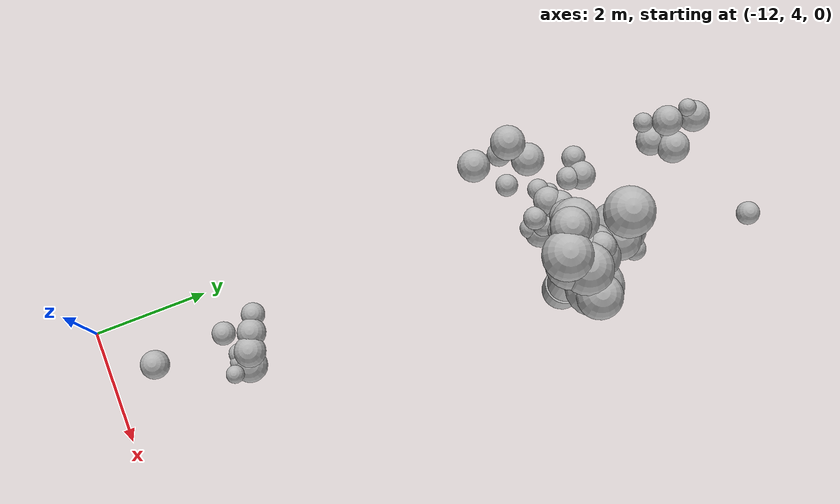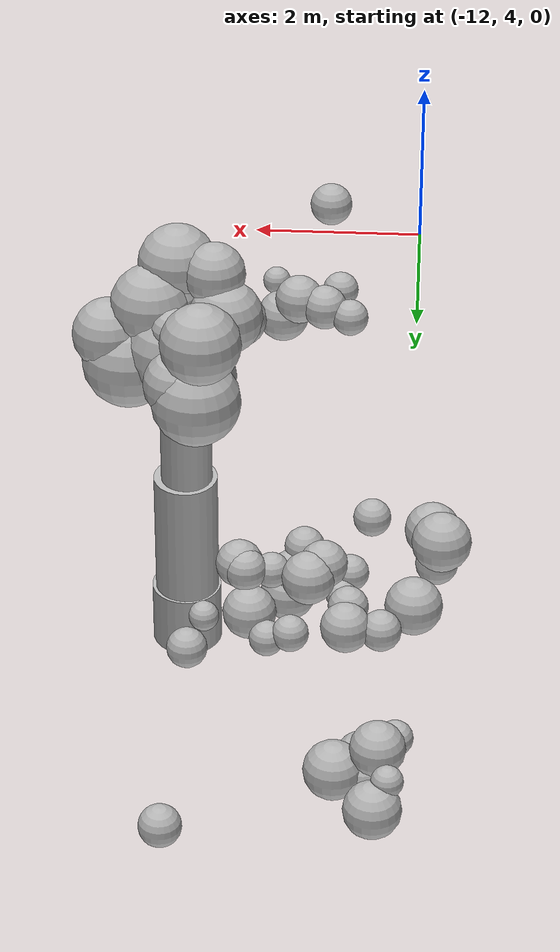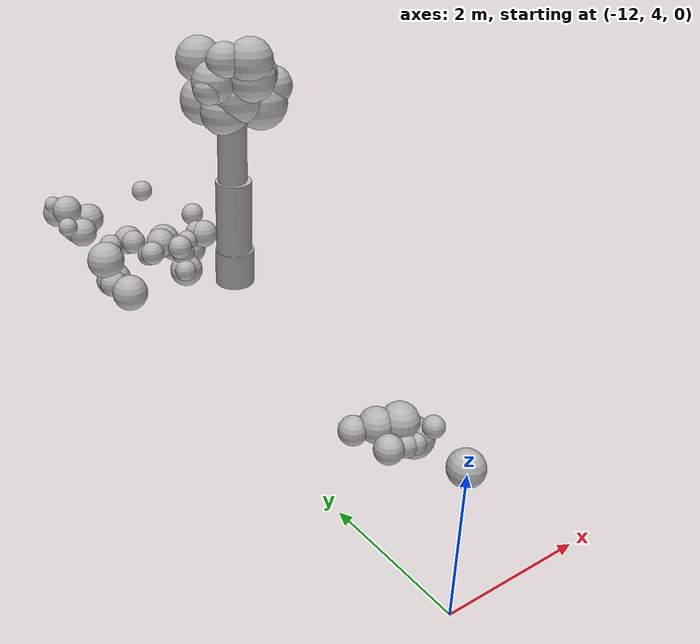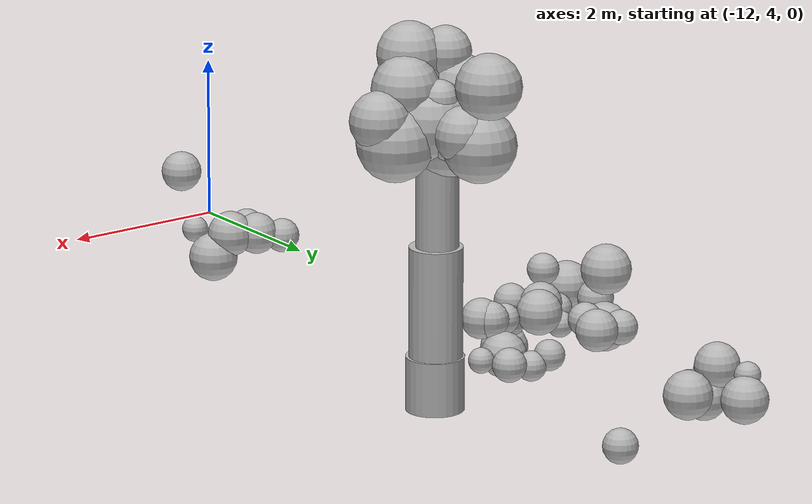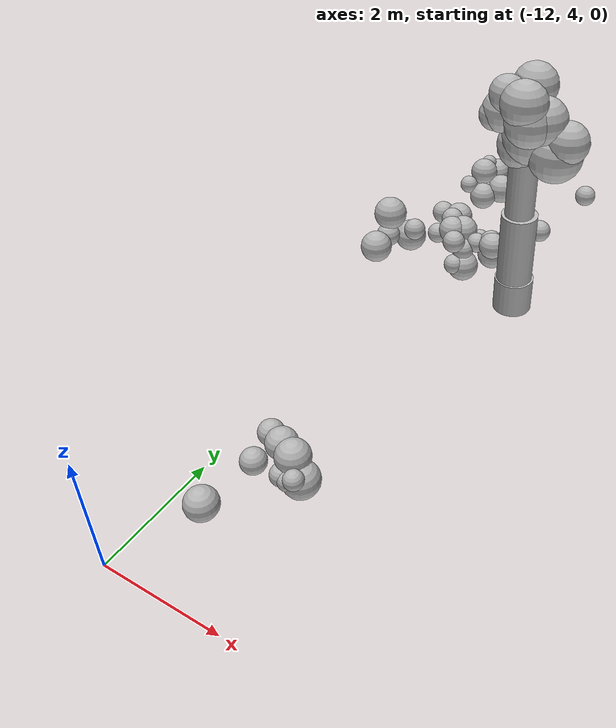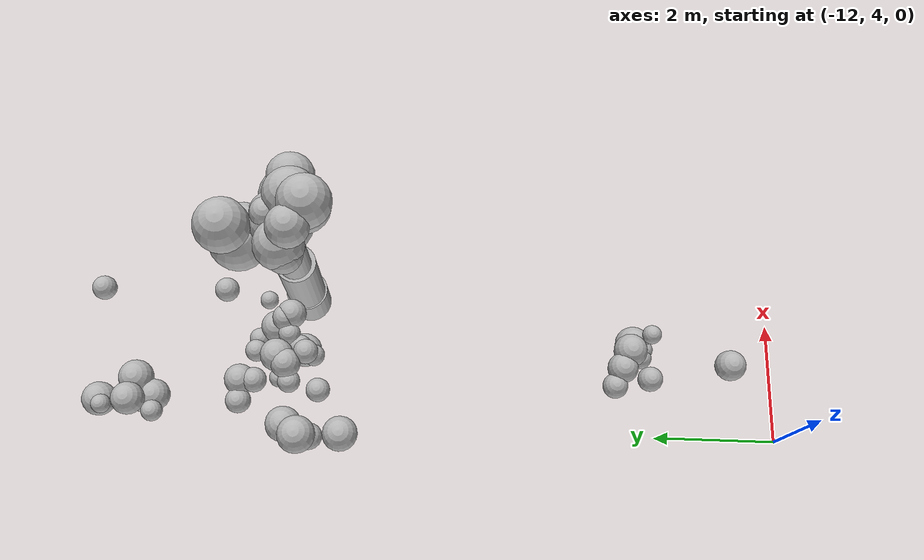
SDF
<sdf version="1.6">
 <world name="default">
  <model name="bush_31">
   <static>true</static>
   <pose>-9.7925 11.8912 0 0 0 0</pose>
   <link name="trunk">
    <pose>0 0 1.5000 0 0 0</pose>
    <collision name="trunk_c">
     <geometry><cylinder><radius>0.3500</radius><length>3.0000</length></cylinder></geometry>
    </collision>
   </link>
   <link name="trunk_v0">
    <pose>-0.0012 0.0007 0.3100 0 0 0</pose>
    <visual name="trunk_v0_v">
     <geometry><cylinder><radius>0.3448</radius><length>0.6448</length></cylinder></geometry>
     <material>
      <script>
       <uri>model://bushfire/materials/scripts</uri>
       <uri>model://bushfire/materials/textures</uri>
       <name>Bushfire/CharBark</name>
      </script>
     </material>
    </visual>
   </link>
   <link name="trunk_v1">
    <pose>-0.0087 0.0049 1.2700 0 0 0</pose>
    <visual name="trunk_v1_v">
     <geometry><cylinder><radius>0.3150</radius><length>1.3520</length></cylinder></geometry>
     <material>
      <script>
       <uri>model://bushfire/materials/scripts</uri>
       <uri>model://bushfire/materials/textures</uri>
       <name>Bushfire/BarkSmooth</name>
      </script>
     </material>
    </visual>
   </link>
   <link name="trunk_v2">
    <pose>-0.0219 0.0123 2.4600 0 0 0</pose>
    <visual name="trunk_v2_v">
     <geometry><cylinder><radius>0.2520</radius><length>1.1232</length></cylinder></geometry>
     <material>
      <script>
       <uri>model://bushfire/materials/scripts</uri>
       <uri>model://bushfire/materials/textures</uri>
       <name>Bushfire/BarkSmooth</name>
      </script>
     </material>
    </visual>
   </link>
   <link name="branch0">
    <pose>0.1908 -0.1245 3.0217 0 0.8707 5.7051</pose>
    <visual name="branch0_v">
     <geometry><cylinder><radius>0.0363</radius><length>0.5959</length></cylinder></geometry>
     <material>
      <script>
       <uri>model://bushfire/materials/scripts</uri>
       <uri>model://bushfire/materials/textures</uri>
       <name>Bushfire/BarkSmooth</name>
      </script>
     </material>
    </visual>
   </link>
   <link name="branch1">
    <pose>-0.0284 0.3811 3.0236 0 1.0137 7.9284</pose>
    <visual name="branch1_v">
     <geometry><cylinder><radius>0.0400</radius><length>0.9004</length></cylinder></geometry>
     <material>
      <script>
       <uri>model://bushfire/materials/scripts</uri>
       <uri>model://bushfire/materials/textures</uri>
       <name>Bushfire/BarkSmooth</name>
      </script>
     </material>
    </visual>
   </link>
   <link name="branch2">
    <pose>-0.1347 -0.0751 2.9916 0 0.5234 9.9337</pose>
    <visual name="branch2_v">
     <geometry><cylinder><radius>0.0324</radius><length>0.6170</length></cylinder></geometry>
     <material>
      <script>
       <uri>model://bushfire/materials/scripts</uri>
       <uri>model://bushfire/materials/textures</uri>
       <name>Bushfire/BarkSmooth</name>
      </script>
     </material>
    </visual>
   </link>
   <link name="foliage0">
    <pose>0.0651 0.0145 3.4418 0 0 0</pose>
    <visual name="foliage0_v">
     <geometry><sphere><radius>0.4820</radius></sphere></geometry>
     <material>
      <script>
       <uri>model://bushfire/materials/scripts</uri>
       <uri>model://bushfire/materials/textures</uri>
       <name>Bushfire/Foliage1</name>
      </script>
     </material>
    </visual>
   </link>
   <link name="foliage1">
    <pose>-0.1770 0.6113 3.2597 0 0 0</pose>
    <visual name="foliage1_v">
     <geometry><sphere><radius>0.4311</radius></sphere></geometry>
     <material>
      <script>
       <uri>model://bushfire/materials/scripts</uri>
       <uri>model://bushfire/materials/textures</uri>
       <name>Bushfire/Foliage2</name>
      </script>
     </material>
    </visual>
   </link>
   <link name="foliage2">
    <pose>-0.5392 -0.1216 3.7126 0 0 0</pose>
    <visual name="foliage2_v">
     <geometry><sphere><radius>0.2622</radius></sphere></geometry>
     <material>
      <script>
       <uri>model://bushfire/materials/scripts</uri>
       <uri>model://bushfire/materials/textures</uri>
       <name>Bushfire/Foliage0</name>
      </script>
     </material>
    </visual>
   </link>
   <link name="foliage3">
    <pose>0.5191 -0.0549 3.2541 0 0 0</pose>
    <visual name="foliage3_v">
     <geometry><sphere><radius>0.4536</radius></sphere></geometry>
     <material>
      <script>
       <uri>model://bushfire/materials/scripts</uri>
       <uri>model://bushfire/materials/textures</uri>
       <name>Bushfire/Foliage1</name>
      </script>
     </material>
    </visual>
   </link>
   <link name="foliage4">
    <pose>-0.0077 0.5340 3.3938 0 0 0</pose>
    <visual name="foliage4_v">
     <geometry><sphere><radius>0.3392</radius></sphere></geometry>
     <material>
      <script>
       <uri>model://bushfire/materials/scripts</uri>
       <uri>model://bushfire/materials/textures</uri>
       <name>Bushfire/Foliage2</name>
      </script>
     </material>
    </visual>
   </link>
   <link name="foliage5">
    <pose>-0.3002 -0.2157 4.1640 0 0 0</pose>
    <visual name="foliage5_v">
     <geometry><sphere><radius>0.3010</radius></sphere></geometry>
     <material>
      <script>
       <uri>model://bushfire/materials/scripts</uri>
       <uri>model://bushfire/materials/textures</uri>
       <name>Bushfire/Foliage0</name>
      </script>
     </material>
    </visual>
   </link>
   <link name="foliage6">
    <pose>0.0598 0.1678 3.7456 0 0 0</pose>
    <visual name="foliage6_v">
     <geometry><sphere><radius>0.2260</radius></sphere></geometry>
     <material>
      <script>
       <uri>model://bushfire/materials/scripts</uri>
       <uri>model://bushfire/materials/textures</uri>
       <name>Bushfire/Foliage2</name>
      </script>
     </material>
    </visual>
   </link>
   <link name="foliage7">
    <pose>-0.1089 0.0849 3.2007 0 0 0</pose>
    <visual name="foliage7_v">
     <geometry><sphere><radius>0.4215</radius></sphere></geometry>
     <material>
      <script>
       <uri>model://bushfire/materials/scripts</uri>
       <uri>model://bushfire/materials/textures</uri>
       <name>Bushfire/Foliage1</name>
      </script>
     </material>
    </visual>
   </link>
   <link name="foliage8">
    <pose>0.0660 -0.4088 4.1498 0 0 0</pose>
    <visual name="foliage8_v">
     <geometry><sphere><radius>0.3807</radius></sphere></geometry>
     <material>
      <script>
       <uri>model://bushfire/materials/scripts</uri>
       <uri>model://bushfire/materials/textures</uri>
       <name>Bushfire/Foliage1</name>
      </script>
     </material>
    </visual>
   </link>
   <link name="foliage9">
    <pose>0.2045 0.0741 3.3878 0 0 0</pose>
    <visual name="foliage9_v">
     <geometry><sphere><radius>0.2739</radius></sphere></geometry>
     <material>
      <script>
       <uri>model://bushfire/materials/scripts</uri>
       <uri>model://bushfire/materials/textures</uri>
       <name>Bushfire/Foliage1</name>
      </script>
     </material>
    </visual>
   </link>
   <link name="foliage10">
    <pose>-0.0283 0.2833 3.2998 0 0 0</pose>
    <visual name="foliage10_v">
     <geometry><sphere><radius>0.3041</radius></sphere></geometry>
     <material>
      <script>
       <uri>model://bushfire/materials/scripts</uri>
       <uri>model://bushfire/materials/textures</uri>
       <name>Bushfire/Foliage1</name>
      </script>
     </material>
    </visual>
   </link>
   <link name="foliage11">
    <pose>0.1446 -0.3472 3.8246 0 0 0</pose>
    <visual name="foliage11_v">
     <geometry><sphere><radius>0.3936</radius></sphere></geometry>
     <material>
      <script>
       <uri>model://bushfire/materials/scripts</uri>
       <uri>model://bushfire/materials/textures</uri>
       <name>Bushfire/Foliage2</name>
      </script>
     </material>
    </visual>
   </link>
   <link name="foliage12">
    <pose>0.3013 -0.1600 3.8272 0 0 0</pose>
    <visual name="foliage12_v">
     <geometry><sphere><radius>0.3970</radius></sphere></geometry>
     <material>
      <script>
       <uri>model://bushfire/materials/scripts</uri>
       <uri>model://bushfire/materials/textures</uri>
       <name>Bushfire/Foliage2</name>
      </script>
     </material>
    </visual>
   </link>
   <link name="foliage13">
    <pose>-0.2346 0.7029 3.9611 0 0 0</pose>
    <visual name="foliage13_v">
     <geometry><sphere><radius>0.3860</radius></sphere></geometry>
     <material>
      <script>
       <uri>model://bushfire/materials/scripts</uri>
       <uri>model://bushfire/materials/textures</uri>
       <name>Bushfire/Foliage0</name>
      </script>
     </material>
    </visual>
   </link>
   <link name="foliage14">
    <pose>-0.4162 -0.0548 3.7836 0 0 0</pose>
    <visual name="foliage14_v">
     <geometry><sphere><radius>0.3601</radius></sphere></geometry>
     <material>
      <script>
       <uri>model://bushfire/materials/scripts</uri>
       <uri>model://bushfire/materials/textures</uri>
       <name>Bushfire/Foliage2</name>
      </script>
     </material>
    </visual>
   </link>
   <link name="foliage15">
    <pose>0.7104 -0.0897 3.5308 0 0 0</pose>
    <visual name="foliage15_v">
     <geometry><sphere><radius>0.3518</radius></sphere></geometry>
     <material>
      <script>
       <uri>model://bushfire/materials/scripts</uri>
       <uri>model://bushfire/materials/textures</uri>
       <name>Bushfire/Foliage2</name>
      </script>
     </material>
    </visual>
   </link>
  </model>
  <model name="scrub">
   <static>true</static>
   <link name="scrub6_0">
    <pose>-11.6614 14.5257 0.4744 0 0 0</pose>
    <visual name="scrub6_0_v">
     <geometry><sphere><radius>0.2636</radius></sphere></geometry>
     <material>
      <script>
       <uri>model://bushfire/materials/scripts</uri>
       <uri>model://bushfire/materials/textures</uri>
       <name>Bushfire/Foliage0</name>
      </script>
     </material>
    </visual>
   </link>
   <link name="scrub6_1">
    <pose>-11.6409 14.2947 0.4794 0 0 0</pose>
    <visual name="scrub6_1_v">
     <geometry><sphere><radius>0.2633</radius></sphere></geometry>
     <material>
      <script>
       <uri>model://bushfire/materials/scripts</uri>
       <uri>model://bushfire/materials/textures</uri>
       <name>Bushfire/Foliage1</name>
      </script>
     </material>
    </visual>
   </link>
   <link name="scrub6_2">
    <pose>-11.8864 15.0206 0.8327 0 0 0</pose>
    <visual name="scrub6_2_v">
     <geometry><sphere><radius>0.1543</radius></sphere></geometry>
     <material>
      <script>
       <uri>model://bushfire/materials/scripts</uri>
       <uri>model://bushfire/materials/textures</uri>
       <name>Bushfire/Foliage1</name>
      </script>
     </material>
    </visual>
   </link>
   <link name="scrub6_3">
    <pose>-11.3760 14.5882 0.5763 0 0 0</pose>
    <visual name="scrub6_3_v">
     <geometry><sphere><radius>0.2860</radius></sphere></geometry>
     <material>
      <script>
       <uri>model://bushfire/materials/scripts</uri>
       <uri>model://bushfire/materials/textures</uri>
       <name>Bushfire/Foliage0</name>
      </script>
     </material>
    </visual>
   </link>
   <link name="scrub6_4">
    <pose>-11.7573 15.1405 0.5933 0 0 0</pose>
    <visual name="scrub6_4_v">
     <geometry><sphere><radius>0.2763</radius></sphere></geometry>
     <material>
      <script>
       <uri>model://bushfire/materials/scripts</uri>
       <uri>model://bushfire/materials/textures</uri>
       <name>Bushfire/Foliage1</name>
      </script>
     </material>
    </visual>
   </link>
   <link name="scrub6_5">
    <pose>-11.9443 14.2357 0.6902 0 0 0</pose>
    <visual name="scrub6_5_v">
     <geometry><sphere><radius>0.1724</radius></sphere></geometry>
     <material>
      <script>
       <uri>model://bushfire/materials/scripts</uri>
       <uri>model://bushfire/materials/textures</uri>
       <name>Bushfire/Foliage2</name>
      </script>
     </material>
    </visual>
   </link>
   <link name="scrub6_6">
    <pose>-11.7863 14.5934 0.8581 0 0 0</pose>
    <visual name="scrub6_6_v">
     <geometry><sphere><radius>0.2647</radius></sphere></geometry>
     <material>
      <script>
       <uri>model://bushfire/materials/scripts</uri>
       <uri>model://bushfire/materials/textures</uri>
       <name>Bushfire/Foliage0</name>
      </script>
     </material>
    </visual>
   </link>
   <link name="scrub18_4">
    <pose>-10.9481 4.9464 0.9614 0 0 0</pose>
    <visual name="scrub18_4_v">
     <geometry><sphere><radius>0.2454</radius></sphere></geometry>
     <material>
      <script>
       <uri>model://bushfire/materials/scripts</uri>
       <uri>model://bushfire/materials/textures</uri>
       <name>Bushfire/Foliage0</name>
      </script>
     </material>
    </visual>
   </link>
   <link name="scrub26_0">
    <pose>-11.4206 12.8231 0.8724 0 0 0</pose>
    <visual name="scrub26_0_v">
     <geometry><sphere><radius>0.2484</radius></sphere></geometry>
     <material>
      <script>
       <uri>model://bushfire/materials/scripts</uri>
       <uri>model://bushfire/materials/textures</uri>
       <name>Bushfire/Foliage0</name>
      </script>
     </material>
    </visual>
   </link>
   <link name="scrub26_1">
    <pose>-11.0306 12.2377 1.0126 0 0 0</pose>
    <visual name="scrub26_1_v">
     <geometry><sphere><radius>0.2666</radius></sphere></geometry>
     <material>
      <script>
       <uri>model://bushfire/materials/scripts</uri>
       <uri>model://bushfire/materials/textures</uri>
       <name>Bushfire/Foliage0</name>
      </script>
     </material>
    </visual>
   </link>
   <link name="scrub26_2">
    <pose>-10.8434 11.8947 0.8521 0 0 0</pose>
    <visual name="scrub26_2_v">
     <geometry><sphere><radius>0.1958</radius></sphere></geometry>
     <material>
      <script>
       <uri>model://bushfire/materials/scripts</uri>
       <uri>model://bushfire/materials/textures</uri>
       <name>Bushfire/Foliage1</name>
      </script>
     </material>
    </visual>
   </link>
   <link name="scrub26_3">
    <pose>-11.7636 12.8223 0.8454 0 0 0</pose>
    <visual name="scrub26_3_v">
     <geometry><sphere><radius>0.2043</radius></sphere></geometry>
     <material>
      <script>
       <uri>model://bushfire/materials/scripts</uri>
       <uri>model://bushfire/materials/textures</uri>
       <name>Bushfire/Foliage2</name>
      </script>
     </material>
    </visual>
   </link>
   <link name="scrub26_4">
    <pose>-11.4372 12.5798 0.9381 0 0 0</pose>
    <visual name="scrub26_4_v">
     <geometry><sphere><radius>0.2013</radius></sphere></geometry>
     <material>
      <script>
       <uri>model://bushfire/materials/scripts</uri>
       <uri>model://bushfire/materials/textures</uri>
       <name>Bushfire/Foliage1</name>
      </script>
     </material>
    </visual>
   </link>
   <link name="scrub26_5">
    <pose>-10.8725 12.6441 0.6296 0 0 0</pose>
    <visual name="scrub26_5_v">
     <geometry><sphere><radius>0.1830</radius></sphere></geometry>
     <material>
      <script>
       <uri>model://bushfire/materials/scripts</uri>
       <uri>model://bushfire/materials/textures</uri>
       <name>Bushfire/Foliage2</name>
      </script>
     </material>
    </visual>
   </link>
   <link name="scrub26_6">
    <pose>-11.1733 12.0804 1.0612 0 0 0</pose>
    <visual name="scrub26_6_v">
     <geometry><sphere><radius>0.2442</radius></sphere></geometry>
     <material>
      <script>
       <uri>model://bushfire/materials/scripts</uri>
       <uri>model://bushfire/materials/textures</uri>
       <name>Bushfire/Foliage2</name>
      </script>
     </material>
    </visual>
   </link>
   <link name="scrub26_7">
    <pose>-11.3553 12.2040 0.8001 0 0 0</pose>
    <visual name="scrub26_7_v">
     <geometry><sphere><radius>0.1575</radius></sphere></geometry>
     <material>
      <script>
       <uri>model://bushfire/materials/scripts</uri>
       <uri>model://bushfire/materials/textures</uri>
       <name>Bushfire/Foliage1</name>
      </script>
     </material>
    </visual>
   </link>
   <link name="scrub50_8">
    <pose>-9.9005 13.1825 0.8396 0 0 0</pose>
    <visual name="scrub50_8_v">
     <geometry><sphere><radius>0.1990</radius></sphere></geometry>
     <material>
      <script>
       <uri>model://bushfire/materials/scripts</uri>
       <uri>model://bushfire/materials/textures</uri>
       <name>Bushfire/Foliage1</name>
      </script>
     </material>
    </visual>
   </link>
   <link name="scrub58_0">
    <pose>-10.6388 12.6131 0.5343 0 0 0</pose>
    <visual name="scrub58_0_v">
     <geometry><sphere><radius>0.1775</radius></sphere></geometry>
     <material>
      <script>
       <uri>model://bushfire/materials/scripts</uri>
       <uri>model://bushfire/materials/textures</uri>
       <name>Bushfire/Foliage2</name>
      </script>
     </material>
    </visual>
   </link>
   <link name="scrub58_1">
    <pose>-10.9699 11.7708 1.0463 0 0 0</pose>
    <visual name="scrub58_1_v">
     <geometry><sphere><radius>0.2005</radius></sphere></geometry>
     <material>
      <script>
       <uri>model://bushfire/materials/scripts</uri>
       <uri>model://bushfire/materials/textures</uri>
       <name>Bushfire/Foliage0</name>
      </script>
     </material>
    </visual>
   </link>
   <link name="scrub58_2">
    <pose>-10.0112 12.4922 0.6890 0 0 0</pose>
    <visual name="scrub58_2_v">
     <geometry><sphere><radius>0.1499</radius></sphere></geometry>
     <material>
      <script>
       <uri>model://bushfire/materials/scripts</uri>
       <uri>model://bushfire/materials/textures</uri>
       <name>Bushfire/Foliage1</name>
      </script>
     </material>
    </visual>
   </link>
   <link name="scrub58_3">
    <pose>-10.3362 12.0477 1.0176 0 0 0</pose>
    <visual name="scrub58_3_v">
     <geometry><sphere><radius>0.2381</radius></sphere></geometry>
     <material>
      <script>
       <uri>model://bushfire/materials/scripts</uri>
       <uri>model://bushfire/materials/textures</uri>
       <name>Bushfire/Foliage1</name>
      </script>
     </material>
    </visual>
   </link>
   <link name="scrub58_4">
    <pose>-10.9146 11.6954 0.6142 0 0 0</pose>
    <visual name="scrub58_4_v">
     <geometry><sphere><radius>0.1801</radius></sphere></geometry>
     <material>
      <script>
       <uri>model://bushfire/materials/scripts</uri>
       <uri>model://bushfire/materials/textures</uri>
       <name>Bushfire/Foliage0</name>
      </script>
     </material>
    </visual>
   </link>
   <link name="scrub58_5">
    <pose>-10.6589 12.0674 0.9612 0 0 0</pose>
    <visual name="scrub58_5_v">
     <geometry><sphere><radius>0.1782</radius></sphere></geometry>
     <material>
      <script>
       <uri>model://bushfire/materials/scripts</uri>
       <uri>model://bushfire/materials/textures</uri>
       <name>Bushfire/Foliage0</name>
      </script>
     </material>
    </visual>
   </link>
   <link name="scrub58_6">
    <pose>-10.8120 11.8562 0.5291 0 0 0</pose>
    <visual name="scrub58_6_v">
     <geometry><sphere><radius>0.2786</radius></sphere></geometry>
     <material>
      <script>
       <uri>model://bushfire/materials/scripts</uri>
       <uri>model://bushfire/materials/textures</uri>
       <name>Bushfire/Foliage1</name>
      </script>
     </material>
    </visual>
   </link>
   <link name="scrub58_7">
    <pose>-10.4038 12.1439 1.0174 0 0 0</pose>
    <visual name="scrub58_7_v">
     <geometry><sphere><radius>0.2116</radius></sphere></geometry>
     <material>
      <script>
       <uri>model://bushfire/materials/scripts</uri>
       <uri>model://bushfire/materials/textures</uri>
       <name>Bushfire/Foliage0</name>
      </script>
     </material>
    </visual>
   </link>
   <link name="scrub58_8">
    <pose>-10.4518 12.3294 0.6336 0 0 0</pose>
    <visual name="scrub58_8_v">
     <geometry><sphere><radius>0.2682</radius></sphere></geometry>
     <material>
      <script>
       <uri>model://bushfire/materials/scripts</uri>
       <uri>model://bushfire/materials/textures</uri>
       <name>Bushfire/Foliage2</name>
      </script>
     </material>
    </visual>
   </link>
   <link name="scrub62_3">
    <pose>-9.8222 15.3555 0.4938 0 0 0</pose>
    <visual name="scrub62_3_v">
     <geometry><sphere><radius>0.2039</radius></sphere></geometry>
     <material>
      <script>
       <uri>model://bushfire/materials/scripts</uri>
       <uri>model://bushfire/materials/textures</uri>
       <name>Bushfire/Foliage1</name>
      </script>
     </material>
    </visual>
   </link>
   <link name="scrub64_0">
    <pose>-11.6333 11.5054 1.2364 0 0 0</pose>
    <visual name="scrub64_0_v">
     <geometry><sphere><radius>0.1894</radius></sphere></geometry>
     <material>
      <script>
       <uri>model://bushfire/materials/scripts</uri>
       <uri>model://bushfire/materials/textures</uri>
       <name>Bushfire/Foliage2</name>
      </script>
     </material>
    </visual>
   </link>
   <link name="scrub64_1">
    <pose>-11.4416 12.0245 0.9304 0 0 0</pose>
    <visual name="scrub64_1_v">
     <geometry><sphere><radius>0.1822</radius></sphere></geometry>
     <material>
      <script>
       <uri>model://bushfire/materials/scripts</uri>
       <uri>model://bushfire/materials/textures</uri>
       <name>Bushfire/Foliage2</name>
      </script>
     </material>
    </visual>
   </link>
   <link name="scrub64_2">
    <pose>-12.3319 11.8056 1.1829 0 0 0</pose>
    <visual name="scrub64_2_v">
     <geometry><sphere><radius>0.2998</radius></sphere></geometry>
     <material>
      <script>
       <uri>model://bushfire/materials/scripts</uri>
       <uri>model://bushfire/materials/textures</uri>
       <name>Bushfire/Foliage2</name>
      </script>
     </material>
    </visual>
   </link>
   <link name="scrub64_3">
    <pose>-12.2423 11.1612 0.8500 0 0 0</pose>
    <visual name="scrub64_3_v">
     <geometry><sphere><radius>0.2832</radius></sphere></geometry>
     <material>
      <script>
       <uri>model://bushfire/materials/scripts</uri>
       <uri>model://bushfire/materials/textures</uri>
       <name>Bushfire/Foliage0</name>
      </script>
     </material>
    </visual>
   </link>
   <link name="scrub64_4">
    <pose>-12.2930 11.6575 0.8050 0 0 0</pose>
    <visual name="scrub64_4_v">
     <geometry><sphere><radius>0.2160</radius></sphere></geometry>
     <material>
      <script>
       <uri>model://bushfire/materials/scripts</uri>
       <uri>model://bushfire/materials/textures</uri>
       <name>Bushfire/Foliage1</name>
      </script>
     </material>
    </visual>
   </link>
   <link name="scrub64_5">
    <pose>-12.0758 12.1142 0.6098 0 0 0</pose>
    <visual name="scrub64_5_v">
     <geometry><sphere><radius>0.2912</radius></sphere></geometry>
     <material>
      <script>
       <uri>model://bushfire/materials/scripts</uri>
       <uri>model://bushfire/materials/textures</uri>
       <name>Bushfire/Foliage1</name>
      </script>
     </material>
    </visual>
   </link>
   <link name="scrub77_0">
    <pose>-10.5744 6.2115 0.3567 0 0 0</pose>
    <visual name="scrub77_0_v">
     <geometry><sphere><radius>0.1642</radius></sphere></geometry>
     <material>
      <script>
       <uri>model://bushfire/materials/scripts</uri>
       <uri>model://bushfire/materials/textures</uri>
       <name>Bushfire/Foliage0</name>
      </script>
     </material>
    </visual>
   </link>
   <link name="scrub77_1">
    <pose>-10.4600 6.3638 0.2998 0 0 0</pose>
    <visual name="scrub77_1_v">
     <geometry><sphere><radius>0.2958</radius></sphere></geometry>
     <material>
      <script>
       <uri>model://bushfire/materials/scripts</uri>
       <uri>model://bushfire/materials/textures</uri>
       <name>Bushfire/Foliage0</name>
      </script>
     </material>
    </visual>
   </link>
   <link name="scrub77_2">
    <pose>-11.1109 6.1393 0.5285 0 0 0</pose>
    <visual name="scrub77_2_v">
     <geometry><sphere><radius>0.2050</radius></sphere></geometry>
     <material>
      <script>
       <uri>model://bushfire/materials/scripts</uri>
       <uri>model://bushfire/materials/textures</uri>
       <name>Bushfire/Foliage0</name>
      </script>
     </material>
    </visual>
   </link>
   <link name="scrub77_3">
    <pose>-10.8818 6.6466 0.5929 0 0 0</pose>
    <visual name="scrub77_3_v">
     <geometry><sphere><radius>0.1452</radius></sphere></geometry>
     <material>
      <script>
       <uri>model://bushfire/materials/scripts</uri>
       <uri>model://bushfire/materials/textures</uri>
       <name>Bushfire/Foliage1</name>
      </script>
     </material>
    </visual>
   </link>
   <link name="scrub77_4">
    <pose>-10.3697 6.0996 0.6049 0 0 0</pose>
    <visual name="scrub77_4_v">
     <geometry><sphere><radius>0.1577</radius></sphere></geometry>
     <material>
      <script>
       <uri>model://bushfire/materials/scripts</uri>
       <uri>model://bushfire/materials/textures</uri>
       <name>Bushfire/Foliage1</name>
      </script>
     </material>
    </visual>
   </link>
   <link name="scrub77_5">
    <pose>-10.7188 6.2513 0.3588 0 0 0</pose>
    <visual name="scrub77_5_v">
     <geometry><sphere><radius>0.1796</radius></sphere></geometry>
     <material>
      <script>
       <uri>model://bushfire/materials/scripts</uri>
       <uri>model://bushfire/materials/textures</uri>
       <name>Bushfire/Foliage0</name>
      </script>
     </material>
    </visual>
   </link>
   <link name="scrub77_6">
    <pose>-11.2422 6.7156 0.5208 0 0 0</pose>
    <visual name="scrub77_6_v">
     <geometry><sphere><radius>0.2068</radius></sphere></geometry>
     <material>
      <script>
       <uri>model://bushfire/materials/scripts</uri>
       <uri>model://bushfire/materials/textures</uri>
       <name>Bushfire/Foliage0</name>
      </script>
     </material>
    </visual>
   </link>
   <link name="scrub77_7">
    <pose>-10.9472 6.5904 0.5697 0 0 0</pose>
    <visual name="scrub77_7_v">
     <geometry><sphere><radius>0.2517</radius></sphere></geometry>
     <material>
      <script>
       <uri>model://bushfire/materials/scripts</uri>
       <uri>model://bushfire/materials/textures</uri>
       <name>Bushfire/Foliage1</name>
      </script>
     </material>
    </visual>
   </link>
   <link name="scrub77_8">
    <pose>-10.6476 6.4594 0.5831 0 0 0</pose>
    <visual name="scrub77_8_v">
     <geometry><sphere><radius>0.2761</radius></sphere></geometry>
     <material>
      <script>
       <uri>model://bushfire/materials/scripts</uri>
       <uri>model://bushfire/materials/textures</uri>
       <name>Bushfire/Foliage2</name>
      </script>
     </material>
    </visual>
   </link>
  </model>
 </world>
</sdf>
